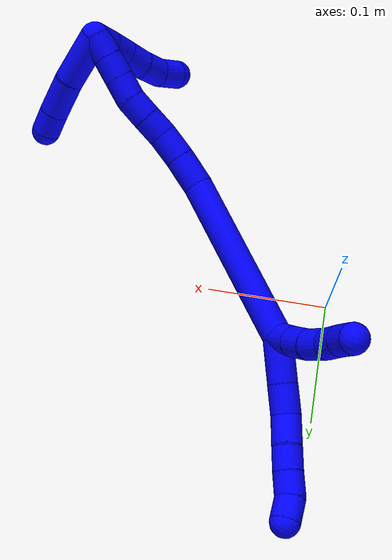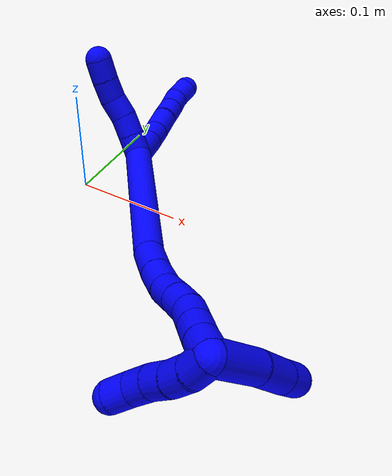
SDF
<sdf version="1.7">
 <world name="default">
  <model name="photoneo_s_sensor">
   <static>1</static>
   <pose>0 0 2 1.57079 1.57079 3.14159</pose>
   <link name="link">
    <inertial><mass>0.1</mass></inertial>
    <sensor name="sensor" type="depth">
     <update_rate>30</update_rate>
     <camera>
      <horizontal_fov>1.22</horizontal_fov>
      <image><width>1920</width><height>1200</height><format>B8G8R8</format></image>
      <clip><near>0.1</near><far>4</far></clip>
      <depth_camera><output>points</output></depth_camera>
     </camera>
     <plugin name="camera_plugin" filename="libgazebo_ros_depth_camera.so">
      <baseline>0.2</baseline>
      <alwaysOn>1</alwaysOn>
      <updateRate>0.0</updateRate>
      <cameraName>camera_ir</cameraName>
      <imageTopicName>/camera/color/image_raw</imageTopicName>
      <cameraInfoTopicName>/camera/color/camera_info</cameraInfoTopicName>
      <depthImageTopicName>/camera/depth/image_raw</depthImageTopicName>
      <depthImageCameraInfoTopicName>/camera/depth/camera_info</depthImageCameraInfoTopicName>
      <pointCloudTopicName>/camera/depth/points</pointCloudTopicName>
      <frameName>fr_optical</frameName>
      <pointCloudCutoff>0.1</pointCloudCutoff>
      <pointCloudCutoffMax>2.0</pointCloudCutoffMax>
      <distortionK1>0</distortionK1>
      <distortionK2>0</distortionK2>
      <distortionK3>0</distortionK3>
      <distortionT1>0</distortionT1>
      <distortionT2>0</distortionT2>
      <CxPrime>0</CxPrime>
      <Cx>0</Cx>
      <Cy>0</Cy>
      <focalLength>0</focalLength>
      <hackBaseline>0</hackBaseline>
     </plugin>
    </sensor>
   </link>
  </model>
  <model name="bin">
   <static>1</static>
   <link name="bottom">
    <collision name="collision-bottom">
     <pose>0 0 -0.01 0 -0 0</pose>
     <geometry><box><size>0.8 0.6 0.02</size></box></geometry>
     <surface>
      <friction><ode><mu>100</mu><mu2>100</mu2></ode></friction>
      <contact><collide_bitmask>65535</collide_bitmask></contact>
     </surface>
    </collision>
   </link>
   <link name="west_wall">
    <collision name="collision-west_wall">
     <pose>-0.41 0 0.1 0 -0 0</pose>
     <geometry><box><size>0.02 0.6 0.2</size></box></geometry>
     <surface>
      <friction><ode><mu>100</mu><mu2>100</mu2></ode></friction>
      <contact><collide_bitmask>65535</collide_bitmask></contact>
     </surface>
    </collision>
   </link>
   <link name="east_wall">
    <collision name="collision-east_wall">
     <pose>0.41 0 0.1 0 -0 0</pose>
     <geometry><box><size>0.02 0.6 0.2</size></box></geometry>
     <surface>
      <friction><ode><mu>100</mu><mu2>100</mu2></ode></friction>
      <contact><collide_bitmask>65535</collide_bitmask></contact>
     </surface>
    </collision>
   </link>
   <link name="south_wall">
    <collision name="collision-south_wall">
     <pose>0 -0.31 0.1 0 -0 0</pose>
     <geometry><box><size>0.8 0.02 0.2</size></box></geometry>
     <surface>
      <friction><ode><mu>100</mu><mu2>100</mu2></ode></friction>
      <contact><collide_bitmask>65535</collide_bitmask></contact>
     </surface>
    </collision>
   </link>
   <link name="north_wall">
    <collision name="collision-north_wall">
     <pose>0 0.31 0.1 0 -0 0</pose>
     <geometry><box><size>0.8 0.02 0.2</size></box></geometry>
     <surface>
      <friction><ode><mu>100</mu><mu2>100</mu2></ode></friction>
      <contact><collide_bitmask>65535</collide_bitmask></contact>
     </surface>
    </collision>
   </link>
  </model>
  <model name="1">
   <static>0</static>
   <link name="1">
    <collision name="collision-cylinder-e_1_2_8">
     <pose>-0.012828 -0.002999 -0.013653 2.92537 -0.742491 -2.5978</pose>
     <geometry><cylinder><radius>0.0125</radius><length>0.037945</length></cylinder></geometry>
     <surface>
      <friction><ode><mu>1.16</mu><mu2>1.16</mu2><slip1>0</slip1><slip2>0</slip2></ode></friction>
      <contact><ode><kp>1e+06</kp><kd>1</kd><max_vel>0</max_vel><min_depth>0.001</min_depth></ode></contact>
     </surface>
    </collision>
    <visual name="visual-cylinder-e_1_2_8">
     <pose>-0.012828 -0.002999 -0.013653 2.92537 -0.742491 -2.5978</pose>
     <geometry><cylinder><radius>0.0125</radius><length>0.037945</length></cylinder></geometry>
     <material><ambient>0 0 1 1</ambient></material>
    </visual>
    <collision name="collision-cylinder-e_2_8_9">
     <pose>-0.035204 -0.007607 -0.036035 2.95936 -0.821895 -2.72823</pose>
     <geometry><cylinder><radius>0.0125</radius><length>0.026073</length></cylinder></geometry>
     <surface>
      <friction><ode><mu>1.16</mu><mu2>1.16</mu2><slip1>0</slip1><slip2>0</slip2></ode></friction>
      <contact><ode><kp>1e+06</kp><kd>1</kd><max_vel>0</max_vel><min_depth>0.001</min_depth></ode></contact>
     </surface>
    </collision>
    <visual name="visual-cylinder-e_2_8_9">
     <pose>-0.035204 -0.007607 -0.036035 2.95936 -0.821895 -2.72823</pose>
     <geometry><cylinder><radius>0.0125</radius><length>0.026073</length></cylinder></geometry>
     <material><ambient>0 0 1 1</ambient></material>
    </visual>
    <collision name="collision-cylinder-e_3_9_10">
     <pose>-0.055721 -0.008224 -0.051064 -2.98558 -1.04409 2.8715</pose>
     <geometry><cylinder><radius>0.0125</radius><length>0.025376</length></cylinder></geometry>
     <surface>
      <friction><ode><mu>1.16</mu><mu2>1.16</mu2><slip1>0</slip1><slip2>0</slip2></ode></friction>
      <contact><ode><kp>1e+06</kp><kd>1</kd><max_vel>0</max_vel><min_depth>0.001</min_depth></ode></contact>
     </surface>
    </collision>
    <visual name="visual-cylinder-e_3_9_10">
     <pose>-0.055721 -0.008224 -0.051064 -2.98558 -1.04409 2.8715</pose>
     <geometry><cylinder><radius>0.0125</radius><length>0.025376</length></cylinder></geometry>
     <material><ambient>0 0 1 1</ambient></material>
    </visual>
    <collision name="collision-cylinder-e_4_10_11">
     <pose>-0.074918 -0.00704 -0.063184 -3.10836 -0.955026 3.07738</pose>
     <geometry><cylinder><radius>0.0125</radius><length>0.02016</length></cylinder></geometry>
     <surface>
      <friction><ode><mu>1.16</mu><mu2>1.16</mu2><slip1>0</slip1><slip2>0</slip2></ode></friction>
      <contact><ode><kp>1e+06</kp><kd>1</kd><max_vel>0</max_vel><min_depth>0.001</min_depth></ode></contact>
     </surface>
    </collision>
    <visual name="visual-cylinder-e_4_10_11">
     <pose>-0.074918 -0.00704 -0.063184 -3.10836 -0.955026 3.07738</pose>
     <geometry><cylinder><radius>0.0125</radius><length>0.02016</length></cylinder></geometry>
     <material><ambient>0 0 1 1</ambient></material>
    </visual>
    <collision name="collision-cylinder-e_5_11_12">
     <pose>-0.091742 -0.006859 -0.074432 3.1393 -1.00749 -3.13742</pose>
     <geometry><cylinder><radius>0.0125</radius><length>0.020334</length></cylinder></geometry>
     <surface>
      <friction><ode><mu>1.16</mu><mu2>1.16</mu2><slip1>0</slip1><slip2>0</slip2></ode></friction>
      <contact><ode><kp>1e+06</kp><kd>1</kd><max_vel>0</max_vel><min_depth>0.001</min_depth></ode></contact>
     </surface>
    </collision>
    <visual name="visual-cylinder-e_5_11_12">
     <pose>-0.091742 -0.006859 -0.074432 3.1393 -1.00749 -3.13742</pose>
     <geometry><cylinder><radius>0.0125</radius><length>0.020334</length></cylinder></geometry>
     <material><ambient>0 0 1 1</ambient></material>
    </visual>
    <collision name="collision-cylinder-e_6_12_6">
     <pose>-0.108489 -0.003588 -0.084751 -2.55035 -0.945098 2.06698</pose>
     <geometry><cylinder><radius>0.0125</radius><length>0.020112</length></cylinder></geometry>
     <surface>
      <friction><ode><mu>1.16</mu><mu2>1.16</mu2><slip1>0</slip1><slip2>0</slip2></ode></friction>
      <contact><ode><kp>1e+06</kp><kd>1</kd><max_vel>0</max_vel><min_depth>0.001</min_depth></ode></contact>
     </surface>
    </collision>
    <visual name="visual-cylinder-e_6_12_6">
     <pose>-0.108489 -0.003588 -0.084751 -2.55035 -0.945098 2.06698</pose>
     <geometry><cylinder><radius>0.0125</radius><length>0.020112</length></cylinder></geometry>
     <material><ambient>0 0 1 1</ambient></material>
    </visual>
    <collision name="collision-cylinder-e_1_2_13">
     <pose>-0.008514 -0.001718 0.004957 0.333691 -1.01856 -0.187534</pose>
     <geometry><cylinder><radius>0.0125</radius><length>0.02</length></cylinder></geometry>
     <surface>
      <friction><ode><mu>1.16</mu><mu2>1.16</mu2><slip1>0</slip1><slip2>0</slip2></ode></friction>
      <contact><ode><kp>1e+06</kp><kd>1</kd><max_vel>0</max_vel><min_depth>0.001</min_depth></ode></contact>
     </surface>
    </collision>
    <visual name="visual-cylinder-e_1_2_13">
     <pose>-0.008514 -0.001718 0.004957 0.333691 -1.01856 -0.187534</pose>
     <geometry><cylinder><radius>0.0125</radius><length>0.02</length></cylinder></geometry>
     <material><ambient>0 0 1 1</ambient></material>
    </visual>
    <collision name="collision-cylinder-e_2_13_14">
     <pose>-0.025313 -0.005116 0.015253 0.304773 -0.976627 -0.162807</pose>
     <geometry><cylinder><radius>0.0125</radius><length>0.02</length></cylinder></geometry>
     <surface>
      <friction><ode><mu>1.16</mu><mu2>1.16</mu2><slip1>0</slip1><slip2>0</slip2></ode></friction>
      <contact><ode><kp>1e+06</kp><kd>1</kd><max_vel>0</max_vel><min_depth>0.001</min_depth></ode></contact>
     </surface>
    </collision>
    <visual name="visual-cylinder-e_2_13_14">
     <pose>-0.025313 -0.005116 0.015253 0.304773 -0.976627 -0.162807</pose>
     <geometry><cylinder><radius>0.0125</radius><length>0.02</length></cylinder></geometry>
     <material><ambient>0 0 1 1</ambient></material>
    </visual>
    <collision name="collision-cylinder-e_3_14_15">
     <pose>-0.040699 -0.009541 0.027079 0.400343 -0.789427 -0.168636</pose>
     <geometry><cylinder><radius>0.0125</radius><length>0.02</length></cylinder></geometry>
     <surface>
      <friction><ode><mu>1.16</mu><mu2>1.16</mu2><slip1>0</slip1><slip2>0</slip2></ode></friction>
      <contact><ode><kp>1e+06</kp><kd>1</kd><max_vel>0</max_vel><min_depth>0.001</min_depth></ode></contact>
     </surface>
    </collision>
    <visual name="visual-cylinder-e_3_14_15">
     <pose>-0.040699 -0.009541 0.027079 0.400343 -0.789427 -0.168636</pose>
     <geometry><cylinder><radius>0.0125</radius><length>0.02</length></cylinder></geometry>
     <material><ambient>0 0 1 1</ambient></material>
    </visual>
    <collision name="collision-cylinder-e_4_15_16">
     <pose>-0.05462 -0.012449 0.040875 0.022304 -0.750685 -0.008788</pose>
     <geometry><cylinder><radius>0.0125</radius><length>0.02</length></cylinder></geometry>
     <surface>
      <friction><ode><mu>1.16</mu><mu2>1.16</mu2><slip1>0</slip1><slip2>0</slip2></ode></friction>
      <contact><ode><kp>1e+06</kp><kd>1</kd><max_vel>0</max_vel><min_depth>0.001</min_depth></ode></contact>
     </surface>
    </collision>
    <visual name="visual-cylinder-e_4_15_16">
     <pose>-0.05462 -0.012449 0.040875 0.022304 -0.750685 -0.008788</pose>
     <geometry><cylinder><radius>0.0125</radius><length>0.02</length></cylinder></geometry>
     <material><ambient>0 0 1 1</ambient></material>
    </visual>
    <collision name="collision-cylinder-e_5_16_5">
     <pose>-0.068672 -0.012322 0.055087 -0.041925 -0.80822 0.017931</pose>
     <geometry><cylinder><radius>0.0125</radius><length>0.02</length></cylinder></geometry>
     <surface>
      <friction><ode><mu>1.16</mu><mu2>1.16</mu2><slip1>0</slip1><slip2>0</slip2></ode></friction>
      <contact><ode><kp>1e+06</kp><kd>1</kd><max_vel>0</max_vel><min_depth>0.001</min_depth></ode></contact>
     </surface>
    </collision>
    <visual name="visual-cylinder-e_5_16_5">
     <pose>-0.068672 -0.012322 0.055087 -0.041925 -0.80822 0.017931</pose>
     <geometry><cylinder><radius>0.0125</radius><length>0.02</length></cylinder></geometry>
     <material><ambient>0 0 1 1</ambient></material>
    </visual>
    <collision name="collision-cylinder-e_1_2_17">
     <pose>0.05919 0.029437 0.031293 -0.754841 0.942941 -0.398836</pose>
     <geometry><cylinder><radius>0.0125</radius><length>0.146277</length></cylinder></geometry>
     <surface>
      <friction><ode><mu>1.16</mu><mu2>1.16</mu2><slip1>0</slip1><slip2>0</slip2></ode></friction>
      <contact><ode><kp>1e+06</kp><kd>1</kd><max_vel>0</max_vel><min_depth>0.001</min_depth></ode></contact>
     </surface>
    </collision>
    <visual name="visual-cylinder-e_1_2_17">
     <pose>0.05919 0.029437 0.031293 -0.754841 0.942941 -0.398836</pose>
     <geometry><cylinder><radius>0.0125</radius><length>0.146277</length></cylinder></geometry>
     <material><ambient>0 0 1 1</ambient></material>
    </visual>
    <collision name="collision-cylinder-e_2_17_18">
     <pose>0.128143 0.067048 0.069359 -0.87886 0.743529 -0.362543</pose>
     <geometry><cylinder><radius>0.0125</radius><length>0.028844</length></cylinder></geometry>
     <surface>
      <friction><ode><mu>1.16</mu><mu2>1.16</mu2><slip1>0</slip1><slip2>0</slip2></ode></friction>
      <contact><ode><kp>1e+06</kp><kd>1</kd><max_vel>0</max_vel><min_depth>0.001</min_depth></ode></contact>
     </surface>
    </collision>
    <visual name="visual-cylinder-e_2_17_18">
     <pose>0.128143 0.067048 0.069359 -0.87886 0.743529 -0.362543</pose>
     <geometry><cylinder><radius>0.0125</radius><length>0.028844</length></cylinder></geometry>
     <material><ambient>0 0 1 1</ambient></material>
    </visual>
    <collision name="collision-cylinder-e_3_18_19">
     <pose>0.145469 0.083074 0.08182 -0.943957 0.662541 -0.347596</pose>
     <geometry><cylinder><radius>0.0125</radius><length>0.024594</length></cylinder></geometry>
     <surface>
      <friction><ode><mu>1.16</mu><mu2>1.16</mu2><slip1>0</slip1><slip2>0</slip2></ode></friction>
      <contact><ode><kp>1e+06</kp><kd>1</kd><max_vel>0</max_vel><min_depth>0.001</min_depth></ode></contact>
     </surface>
    </collision>
    <visual name="visual-cylinder-e_3_18_19">
     <pose>0.145469 0.083074 0.08182 -0.943957 0.662541 -0.347596</pose>
     <geometry><cylinder><radius>0.0125</radius><length>0.024594</length></cylinder></geometry>
     <material><ambient>0 0 1 1</ambient></material>
    </visual>
    <collision name="collision-cylinder-e_4_19_20">
     <pose>0.157692 0.098555 0.092175 -1.02168 0.480206 -0.272729</pose>
     <geometry><cylinder><radius>0.0125</radius><length>0.020168</length></cylinder></geometry>
     <surface>
      <friction><ode><mu>1.16</mu><mu2>1.16</mu2><slip1>0</slip1><slip2>0</slip2></ode></friction>
      <contact><ode><kp>1e+06</kp><kd>1</kd><max_vel>0</max_vel><min_depth>0.001</min_depth></ode></contact>
     </surface>
    </collision>
    <visual name="visual-cylinder-e_4_19_20">
     <pose>0.157692 0.098555 0.092175 -1.02168 0.480206 -0.272729</pose>
     <geometry><cylinder><radius>0.0125</radius><length>0.020168</length></cylinder></geometry>
     <material><ambient>0 0 1 1</ambient></material>
    </visual>
    <collision name="collision-cylinder-e_5_20_21">
     <pose>0.167356 0.113574 0.101462 -1.01212 0.521364 -0.293542</pose>
     <geometry><cylinder><radius>0.0125</radius><length>0.020102</length></cylinder></geometry>
     <surface>
      <friction><ode><mu>1.16</mu><mu2>1.16</mu2><slip1>0</slip1><slip2>0</slip2></ode></friction>
      <contact><ode><kp>1e+06</kp><kd>1</kd><max_vel>0</max_vel><min_depth>0.001</min_depth></ode></contact>
     </surface>
    </collision>
    <visual name="visual-cylinder-e_5_20_21">
     <pose>0.167356 0.113574 0.101462 -1.01212 0.521364 -0.293542</pose>
     <geometry><cylinder><radius>0.0125</radius><length>0.020102</length></cylinder></geometry>
     <material><ambient>0 0 1 1</ambient></material>
    </visual>
    <collision name="collision-cylinder-e_6_21_22">
     <pose>0.178132 0.126598 0.112008 -0.760062 0.614537 -0.25216</pose>
     <geometry><cylinder><radius>0.0125</radius><length>0.020014</length></cylinder></geometry>
     <surface>
      <friction><ode><mu>1.16</mu><mu2>1.16</mu2><slip1>0</slip1><slip2>0</slip2></ode></friction>
      <contact><ode><kp>1e+06</kp><kd>1</kd><max_vel>0</max_vel><min_depth>0.001</min_depth></ode></contact>
     </surface>
    </collision>
    <visual name="visual-cylinder-e_6_21_22">
     <pose>0.178132 0.126598 0.112008 -0.760062 0.614537 -0.25216</pose>
     <geometry><cylinder><radius>0.0125</radius><length>0.020014</length></cylinder></geometry>
     <material><ambient>0 0 1 1</ambient></material>
    </visual>
    <collision name="collision-cylinder-e_7_22_23">
     <pose>0.189621 0.137874 0.123888 -0.758562 0.608838 -0.249158</pose>
     <geometry><cylinder><radius>0.0125</radius><length>0.02</length></cylinder></geometry>
     <surface>
      <friction><ode><mu>1.16</mu><mu2>1.16</mu2><slip1>0</slip1><slip2>0</slip2></ode></friction>
      <contact><ode><kp>1e+06</kp><kd>1</kd><max_vel>0</max_vel><min_depth>0.001</min_depth></ode></contact>
     </surface>
    </collision>
    <visual name="visual-cylinder-e_7_22_23">
     <pose>0.189621 0.137874 0.123888 -0.758562 0.608838 -0.249158</pose>
     <geometry><cylinder><radius>0.0125</radius><length>0.02</length></cylinder></geometry>
     <material><ambient>0 0 1 1</ambient></material>
    </visual>
    <collision name="collision-cylinder-e_8_23_1">
     <pose>0.200767 0.149628 0.135605 -0.814827 0.57358 -0.25319</pose>
     <geometry><cylinder><radius>0.0125</radius><length>0.02</length></cylinder></geometry>
     <surface>
      <friction><ode><mu>1.16</mu><mu2>1.16</mu2><slip1>0</slip1><slip2>0</slip2></ode></friction>
      <contact><ode><kp>1e+06</kp><kd>1</kd><max_vel>0</max_vel><min_depth>0.001</min_depth></ode></contact>
     </surface>
    </collision>
    <visual name="visual-cylinder-e_8_23_1">
     <pose>0.200767 0.149628 0.135605 -0.814827 0.57358 -0.25319</pose>
     <geometry><cylinder><radius>0.0125</radius><length>0.02</length></cylinder></geometry>
     <material><ambient>0 0 1 1</ambient></material>
    </visual>
    <collision name="collision-cylinder-e_1_1_24">
     <pose>0.207308 0.161201 0.119229 -2.89973 0.048851 -0.396772</pose>
     <geometry><cylinder><radius>0.0125</radius><length>0.045657</length></cylinder></geometry>
     <surface>
      <friction><ode><mu>1.16</mu><mu2>1.16</mu2><slip1>0</slip1><slip2>0</slip2></ode></friction>
      <contact><ode><kp>1e+06</kp><kd>1</kd><max_vel>0</max_vel><min_depth>0.001</min_depth></ode></contact>
     </surface>
    </collision>
    <visual name="visual-cylinder-e_1_1_24">
     <pose>0.207308 0.161201 0.119229 -2.89973 0.048851 -0.396772</pose>
     <geometry><cylinder><radius>0.0125</radius><length>0.045657</length></cylinder></geometry>
     <material><ambient>0 0 1 1</ambient></material>
    </visual>
    <collision name="collision-cylinder-e_2_24_25">
     <pose>0.210108 0.168878 0.080492 -3.00889 0.100311 -1.29395</pose>
     <geometry><cylinder><radius>0.0125</radius><length>0.033662</length></cylinder></geometry>
     <surface>
      <friction><ode><mu>1.16</mu><mu2>1.16</mu2><slip1>0</slip1><slip2>0</slip2></ode></friction>
      <contact><ode><kp>1e+06</kp><kd>1</kd><max_vel>0</max_vel><min_depth>0.001</min_depth></ode></contact>
     </surface>
    </collision>
    <visual name="visual-cylinder-e_2_24_25">
     <pose>0.210108 0.168878 0.080492 -3.00889 0.100311 -1.29395</pose>
     <geometry><cylinder><radius>0.0125</radius><length>0.033662</length></cylinder></geometry>
     <material><ambient>0 0 1 1</ambient></material>
    </visual>
    <collision name="collision-cylinder-e_3_25_4">
     <pose>0.212347 0.172211 0.053628 -3.03322 0.053542 -0.917184</pose>
     <geometry><cylinder><radius>0.0125</radius><length>0.02068</length></cylinder></geometry>
     <surface>
      <friction><ode><mu>1.16</mu><mu2>1.16</mu2><slip1>0</slip1><slip2>0</slip2></ode></friction>
      <contact><ode><kp>1e+06</kp><kd>1</kd><max_vel>0</max_vel><min_depth>0.001</min_depth></ode></contact>
     </surface>
    </collision>
    <visual name="visual-cylinder-e_3_25_4">
     <pose>0.212347 0.172211 0.053628 -3.03322 0.053542 -0.917184</pose>
     <geometry><cylinder><radius>0.0125</radius><length>0.02068</length></cylinder></geometry>
     <material><ambient>0 0 1 1</ambient></material>
    </visual>
    <collision name="collision-cylinder-e_1_1_26">
     <pose>0.210346 0.147499 0.137513 2.00823 0.428194 0.658545</pose>
     <geometry><cylinder><radius>0.0125</radius><length>0.02</length></cylinder></geometry>
     <surface>
      <friction><ode><mu>1.16</mu><mu2>1.16</mu2><slip1>0</slip1><slip2>0</slip2></ode></friction>
      <contact><ode><kp>1e+06</kp><kd>1</kd><max_vel>0</max_vel><min_depth>0.001</min_depth></ode></contact>
     </surface>
    </collision>
    <visual name="visual-cylinder-e_1_1_26">
     <pose>0.210346 0.147499 0.137513 2.00823 0.428194 0.658545</pose>
     <geometry><cylinder><radius>0.0125</radius><length>0.02</length></cylinder></geometry>
     <material><ambient>0 0 1 1</ambient></material>
    </visual>
    <collision name="collision-cylinder-e_2_26_27">
     <pose>0.216717 0.130301 0.129808 1.97687 0.22374 0.337917</pose>
     <geometry><cylinder><radius>0.0125</radius><length>0.02</length></cylinder></geometry>
     <surface>
      <friction><ode><mu>1.16</mu><mu2>1.16</mu2><slip1>0</slip1><slip2>0</slip2></ode></friction>
      <contact><ode><kp>1e+06</kp><kd>1</kd><max_vel>0</max_vel><min_depth>0.001</min_depth></ode></contact>
     </surface>
    </collision>
    <visual name="visual-cylinder-e_2_26_27">
     <pose>0.216717 0.130301 0.129808 1.97687 0.22374 0.337917</pose>
     <geometry><cylinder><radius>0.0125</radius><length>0.02</length></cylinder></geometry>
     <material><ambient>0 0 1 1</ambient></material>
    </visual>
    <collision name="collision-cylinder-e_3_27_28">
     <pose>0.219806 0.112097 0.122249 1.95212 0.087139 0.128724</pose>
     <geometry><cylinder><radius>0.0125</radius><length>0.02</length></cylinder></geometry>
     <surface>
      <friction><ode><mu>1.16</mu><mu2>1.16</mu2><slip1>0</slip1><slip2>0</slip2></ode></friction>
      <contact><ode><kp>1e+06</kp><kd>1</kd><max_vel>0</max_vel><min_depth>0.001</min_depth></ode></contact>
     </surface>
    </collision>
    <visual name="visual-cylinder-e_3_27_28">
     <pose>0.219806 0.112097 0.122249 1.95212 0.087139 0.128724</pose>
     <geometry><cylinder><radius>0.0125</radius><length>0.02</length></cylinder></geometry>
     <material><ambient>0 0 1 1</ambient></material>
    </visual>
    <collision name="collision-cylinder-e_4_28_29">
     <pose>0.222798 0.093589 0.115424 1.89552 0.21386 0.296594</pose>
     <geometry><cylinder><radius>0.0125</radius><length>0.02</length></cylinder></geometry>
     <surface>
      <friction><ode><mu>1.16</mu><mu2>1.16</mu2><slip1>0</slip1><slip2>0</slip2></ode></friction>
      <contact><ode><kp>1e+06</kp><kd>1</kd><max_vel>0</max_vel><min_depth>0.001</min_depth></ode></contact>
     </surface>
    </collision>
    <visual name="visual-cylinder-e_4_28_29">
     <pose>0.222798 0.093589 0.115424 1.89552 0.21386 0.296594</pose>
     <geometry><cylinder><radius>0.0125</radius><length>0.02</length></cylinder></geometry>
     <material><ambient>0 0 1 1</ambient></material>
    </visual>
    <collision name="collision-cylinder-e_5_29_3">
     <pose>0.22801 0.074835 0.111708 1.63373 0.31407 0.334116</pose>
     <geometry><cylinder><radius>0.0125</radius><length>0.02</length></cylinder></geometry>
     <surface>
      <friction><ode><mu>1.16</mu><mu2>1.16</mu2><slip1>0</slip1><slip2>0</slip2></ode></friction>
      <contact><ode><kp>1e+06</kp><kd>1</kd><max_vel>0</max_vel><min_depth>0.001</min_depth></ode></contact>
     </surface>
    </collision>
    <visual name="visual-cylinder-e_5_29_3">
     <pose>0.22801 0.074835 0.111708 1.63373 0.31407 0.334116</pose>
     <geometry><cylinder><radius>0.0125</radius><length>0.02</length></cylinder></geometry>
     <material><ambient>0 0 1 1</ambient></material>
    </visual>
    <collision name="collision-sphere-3">
     <pose>0.231099 0.065343 0.11111 0 -0 0</pose>
     <geometry><sphere><radius>0.0125</radius></sphere></geometry>
     <surface>
      <friction><ode><mu>1.16</mu><mu2>1.16</mu2><slip1>0</slip1><slip2>0</slip2></ode></friction>
      <contact><ode><kp>1e+06</kp><kd>1</kd><max_vel>0</max_vel><min_depth>0.001</min_depth></ode></contact>
     </surface>
    </collision>
    <visual name="visual-sphere-3">
     <pose>0.231099 0.065343 0.11111 0 -0 0</pose>
     <geometry><sphere><radius>0.0125</radius></sphere></geometry>
     <material><ambient>0 0 1 1</ambient></material>
    </visual>
    <collision name="collision-sphere-29">
     <pose>0.224921 0.084327 0.112306 0 -0 0</pose>
     <geometry><sphere><radius>0.0125</radius></sphere></geometry>
     <surface>
      <friction><ode><mu>1.16</mu><mu2>1.16</mu2><slip1>0</slip1><slip2>0</slip2></ode></friction>
      <contact><ode><kp>1e+06</kp><kd>1</kd><max_vel>0</max_vel><min_depth>0.001</min_depth></ode></contact>
     </surface>
    </collision>
    <visual name="visual-sphere-29">
     <pose>0.224921 0.084327 0.112306 0 -0 0</pose>
     <geometry><sphere><radius>0.0125</radius></sphere></geometry>
     <material><ambient>0 0 1 1</ambient></material>
    </visual>
    <collision name="collision-sphere-28">
     <pose>0.220676 0.10285 0.118541 0 -0 0</pose>
     <geometry><sphere><radius>0.0125</radius></sphere></geometry>
     <surface>
      <friction><ode><mu>1.16</mu><mu2>1.16</mu2><slip1>0</slip1><slip2>0</slip2></ode></friction>
      <contact><ode><kp>1e+06</kp><kd>1</kd><max_vel>0</max_vel><min_depth>0.001</min_depth></ode></contact>
     </surface>
    </collision>
    <visual name="visual-sphere-28">
     <pose>0.220676 0.10285 0.118541 0 -0 0</pose>
     <geometry><sphere><radius>0.0125</radius></sphere></geometry>
     <material><ambient>0 0 1 1</ambient></material>
    </visual>
    <collision name="collision-sphere-27">
     <pose>0.218935 0.121343 0.125956 0 -0 0</pose>
     <geometry><sphere><radius>0.0125</radius></sphere></geometry>
     <surface>
      <friction><ode><mu>1.16</mu><mu2>1.16</mu2><slip1>0</slip1><slip2>0</slip2></ode></friction>
      <contact><ode><kp>1e+06</kp><kd>1</kd><max_vel>0</max_vel><min_depth>0.001</min_depth></ode></contact>
     </surface>
    </collision>
    <visual name="visual-sphere-27">
     <pose>0.218935 0.121343 0.125956 0 -0 0</pose>
     <geometry><sphere><radius>0.0125</radius></sphere></geometry>
     <material><ambient>0 0 1 1</ambient></material>
    </visual>
    <collision name="collision-sphere-26">
     <pose>0.214498 0.139259 0.133659 0 -0 0</pose>
     <geometry><sphere><radius>0.0125</radius></sphere></geometry>
     <surface>
      <friction><ode><mu>1.16</mu><mu2>1.16</mu2><slip1>0</slip1><slip2>0</slip2></ode></friction>
      <contact><ode><kp>1e+06</kp><kd>1</kd><max_vel>0</max_vel><min_depth>0.001</min_depth></ode></contact>
     </surface>
    </collision>
    <visual name="visual-sphere-26">
     <pose>0.214498 0.139259 0.133659 0 -0 0</pose>
     <geometry><sphere><radius>0.0125</radius></sphere></geometry>
     <material><ambient>0 0 1 1</ambient></material>
    </visual>
    <collision name="collision-sphere-4">
     <pose>0.212901 0.173328 0.043363 0 -0 0</pose>
     <geometry><sphere><radius>0.0125</radius></sphere></geometry>
     <surface>
      <friction><ode><mu>1.16</mu><mu2>1.16</mu2><slip1>0</slip1><slip2>0</slip2></ode></friction>
      <contact><ode><kp>1e+06</kp><kd>1</kd><max_vel>0</max_vel><min_depth>0.001</min_depth></ode></contact>
     </surface>
    </collision>
    <visual name="visual-sphere-4">
     <pose>0.212901 0.173328 0.043363 0 -0 0</pose>
     <geometry><sphere><radius>0.0125</radius></sphere></geometry>
     <material><ambient>0 0 1 1</ambient></material>
    </visual>
    <collision name="collision-sphere-25">
     <pose>0.211794 0.171094 0.063892 0 -0 0</pose>
     <geometry><sphere><radius>0.0125</radius></sphere></geometry>
     <surface>
      <friction><ode><mu>1.16</mu><mu2>1.16</mu2><slip1>0</slip1><slip2>0</slip2></ode></friction>
      <contact><ode><kp>1e+06</kp><kd>1</kd><max_vel>0</max_vel><min_depth>0.001</min_depth></ode></contact>
     </surface>
    </collision>
    <visual name="visual-sphere-25">
     <pose>0.211794 0.171094 0.063892 0 -0 0</pose>
     <geometry><sphere><radius>0.0125</radius></sphere></geometry>
     <material><ambient>0 0 1 1</ambient></material>
    </visual>
    <collision name="collision-sphere-24">
     <pose>0.208423 0.166662 0.097091 0 -0 0</pose>
     <geometry><sphere><radius>0.0125</radius></sphere></geometry>
     <surface>
      <friction><ode><mu>1.16</mu><mu2>1.16</mu2><slip1>0</slip1><slip2>0</slip2></ode></friction>
      <contact><ode><kp>1e+06</kp><kd>1</kd><max_vel>0</max_vel><min_depth>0.001</min_depth></ode></contact>
     </surface>
    </collision>
    <visual name="visual-sphere-24">
     <pose>0.208423 0.166662 0.097091 0 -0 0</pose>
     <geometry><sphere><radius>0.0125</radius></sphere></geometry>
     <material><ambient>0 0 1 1</ambient></material>
    </visual>
    <collision name="collision-sphere-1">
     <pose>0.206193 0.15574 0.141367 0 -0 0</pose>
     <geometry><sphere><radius>0.0125</radius></sphere></geometry>
     <surface>
      <friction><ode><mu>1.16</mu><mu2>1.16</mu2><slip1>0</slip1><slip2>0</slip2></ode></friction>
      <contact><ode><kp>1e+06</kp><kd>1</kd><max_vel>0</max_vel><min_depth>0.001</min_depth></ode></contact>
     </surface>
    </collision>
    <visual name="visual-sphere-1">
     <pose>0.206193 0.15574 0.141367 0 -0 0</pose>
     <geometry><sphere><radius>0.0125</radius></sphere></geometry>
     <material><ambient>0 0 1 1</ambient></material>
    </visual>
    <collision name="collision-sphere-23">
     <pose>0.19534 0.143517 0.129842 0 -0 0</pose>
     <geometry><sphere><radius>0.0125</radius></sphere></geometry>
     <surface>
      <friction><ode><mu>1.16</mu><mu2>1.16</mu2><slip1>0</slip1><slip2>0</slip2></ode></friction>
      <contact><ode><kp>1e+06</kp><kd>1</kd><max_vel>0</max_vel><min_depth>0.001</min_depth></ode></contact>
     </surface>
    </collision>
    <visual name="visual-sphere-23">
     <pose>0.19534 0.143517 0.129842 0 -0 0</pose>
     <geometry><sphere><radius>0.0125</radius></sphere></geometry>
     <material><ambient>0 0 1 1</ambient></material>
    </visual>
    <collision name="collision-sphere-22">
     <pose>0.183902 0.132231 0.117934 0 -0 0</pose>
     <geometry><sphere><radius>0.0125</radius></sphere></geometry>
     <surface>
      <friction><ode><mu>1.16</mu><mu2>1.16</mu2><slip1>0</slip1><slip2>0</slip2></ode></friction>
      <contact><ode><kp>1e+06</kp><kd>1</kd><max_vel>0</max_vel><min_depth>0.001</min_depth></ode></contact>
     </surface>
    </collision>
    <visual name="visual-sphere-22">
     <pose>0.183902 0.132231 0.117934 0 -0 0</pose>
     <geometry><sphere><radius>0.0125</radius></sphere></geometry>
     <material><ambient>0 0 1 1</ambient></material>
    </visual>
    <collision name="collision-sphere-21">
     <pose>0.172362 0.120965 0.106082 0 -0 0</pose>
     <geometry><sphere><radius>0.0125</radius></sphere></geometry>
     <surface>
      <friction><ode><mu>1.16</mu><mu2>1.16</mu2><slip1>0</slip1><slip2>0</slip2></ode></friction>
      <contact><ode><kp>1e+06</kp><kd>1</kd><max_vel>0</max_vel><min_depth>0.001</min_depth></ode></contact>
     </surface>
    </collision>
    <visual name="visual-sphere-21">
     <pose>0.172362 0.120965 0.106082 0 -0 0</pose>
     <geometry><sphere><radius>0.0125</radius></sphere></geometry>
     <material><ambient>0 0 1 1</ambient></material>
    </visual>
    <collision name="collision-sphere-12">
     <pose>-0.100338 -0.006871 -0.079861 0 -0 0</pose>
     <geometry><sphere><radius>0.0125</radius></sphere></geometry>
     <surface>
      <friction><ode><mu>1.16</mu><mu2>1.16</mu2><slip1>0</slip1><slip2>0</slip2></ode></friction>
      <contact><ode><kp>1e+06</kp><kd>1</kd><max_vel>0</max_vel><min_depth>0.001</min_depth></ode></contact>
     </surface>
    </collision>
    <visual name="visual-sphere-12">
     <pose>-0.100338 -0.006871 -0.079861 0 -0 0</pose>
     <geometry><sphere><radius>0.0125</radius></sphere></geometry>
     <material><ambient>0 0 1 1</ambient></material>
    </visual>
    <collision name="collision-sphere-11">
     <pose>-0.083146 -0.006846 -0.069003 0 -0 0</pose>
     <geometry><sphere><radius>0.0125</radius></sphere></geometry>
     <surface>
      <friction><ode><mu>1.16</mu><mu2>1.16</mu2><slip1>0</slip1><slip2>0</slip2></ode></friction>
      <contact><ode><kp>1e+06</kp><kd>1</kd><max_vel>0</max_vel><min_depth>0.001</min_depth></ode></contact>
     </surface>
    </collision>
    <visual name="visual-sphere-11">
     <pose>-0.083146 -0.006846 -0.069003 0 -0 0</pose>
     <geometry><sphere><radius>0.0125</radius></sphere></geometry>
     <material><ambient>0 0 1 1</ambient></material>
    </visual>
    <collision name="collision-sphere-10">
     <pose>-0.066689 -0.007233 -0.057365 0 -0 0</pose>
     <geometry><sphere><radius>0.0125</radius></sphere></geometry>
     <surface>
      <friction><ode><mu>1.16</mu><mu2>1.16</mu2><slip1>0</slip1><slip2>0</slip2></ode></friction>
      <contact><ode><kp>1e+06</kp><kd>1</kd><max_vel>0</max_vel><min_depth>0.001</min_depth></ode></contact>
     </surface>
    </collision>
    <visual name="visual-sphere-10">
     <pose>-0.066689 -0.007233 -0.057365 0 -0 0</pose>
     <geometry><sphere><radius>0.0125</radius></sphere></geometry>
     <material><ambient>0 0 1 1</ambient></material>
    </visual>
    <collision name="collision-sphere-9">
     <pose>-0.044752 -0.009215 -0.044764 0 -0 0</pose>
     <geometry><sphere><radius>0.0125</radius></sphere></geometry>
     <surface>
      <friction><ode><mu>1.16</mu><mu2>1.16</mu2><slip1>0</slip1><slip2>0</slip2></ode></friction>
      <contact><ode><kp>1e+06</kp><kd>1</kd><max_vel>0</max_vel><min_depth>0.001</min_depth></ode></contact>
     </surface>
    </collision>
    <visual name="visual-sphere-9">
     <pose>-0.044752 -0.009215 -0.044764 0 -0 0</pose>
     <geometry><sphere><radius>0.0125</radius></sphere></geometry>
     <material><ambient>0 0 1 1</ambient></material>
    </visual>
    <collision name="collision-sphere-2">
     <geometry><sphere><radius>0.0125</radius></sphere></geometry>
     <surface>
      <friction><ode><mu>1.16</mu><mu2>1.16</mu2><slip1>0</slip1><slip2>0</slip2></ode></friction>
      <contact><ode><kp>1e+06</kp><kd>1</kd><max_vel>0</max_vel><min_depth>0.001</min_depth></ode></contact>
     </surface>
    </collision>
    <visual name="visual-sphere-2">
     <geometry><sphere><radius>0.0125</radius></sphere></geometry>
     <material><ambient>0 0 1 1</ambient></material>
    </visual>
    <collision name="collision-sphere-19">
     <pose>0.153033 0.090926 0.087507 0 -0 0</pose>
     <geometry><sphere><radius>0.0125</radius></sphere></geometry>
     <surface>
      <friction><ode><mu>1.16</mu><mu2>1.16</mu2><slip1>0</slip1><slip2>0</slip2></ode></friction>
      <contact><ode><kp>1e+06</kp><kd>1</kd><max_vel>0</max_vel><min_depth>0.001</min_depth></ode></contact>
     </surface>
    </collision>
    <visual name="visual-sphere-19">
     <pose>0.153033 0.090926 0.087507 0 -0 0</pose>
     <geometry><sphere><radius>0.0125</radius></sphere></geometry>
     <material><ambient>0 0 1 1</ambient></material>
    </visual>
    <collision name="collision-sphere-8">
     <pose>-0.025655 -0.005998 -0.027306 0 -0 0</pose>
     <geometry><sphere><radius>0.0125</radius></sphere></geometry>
     <surface>
      <friction><ode><mu>1.16</mu><mu2>1.16</mu2><slip1>0</slip1><slip2>0</slip2></ode></friction>
      <contact><ode><kp>1e+06</kp><kd>1</kd><max_vel>0</max_vel><min_depth>0.001</min_depth></ode></contact>
     </surface>
    </collision>
    <visual name="visual-sphere-8">
     <pose>-0.025655 -0.005998 -0.027306 0 -0 0</pose>
     <geometry><sphere><radius>0.0125</radius></sphere></geometry>
     <material><ambient>0 0 1 1</ambient></material>
    </visual>
    <collision name="collision-sphere-6">
     <pose>-0.11664 -0.000305 -0.08964 0 -0 0</pose>
     <geometry><sphere><radius>0.0125</radius></sphere></geometry>
     <surface>
      <friction><ode><mu>1.16</mu><mu2>1.16</mu2><slip1>0</slip1><slip2>0</slip2></ode></friction>
      <contact><ode><kp>1e+06</kp><kd>1</kd><max_vel>0</max_vel><min_depth>0.001</min_depth></ode></contact>
     </surface>
    </collision>
    <visual name="visual-sphere-6">
     <pose>-0.11664 -0.000305 -0.08964 0 -0 0</pose>
     <geometry><sphere><radius>0.0125</radius></sphere></geometry>
     <material><ambient>0 0 1 1</ambient></material>
    </visual>
    <collision name="collision-sphere-13">
     <pose>-0.017027 -0.003436 0.009913 0 -0 0</pose>
     <geometry><sphere><radius>0.0125</radius></sphere></geometry>
     <surface>
      <friction><ode><mu>1.16</mu><mu2>1.16</mu2><slip1>0</slip1><slip2>0</slip2></ode></friction>
      <contact><ode><kp>1e+06</kp><kd>1</kd><max_vel>0</max_vel><min_depth>0.001</min_depth></ode></contact>
     </surface>
    </collision>
    <visual name="visual-sphere-13">
     <pose>-0.017027 -0.003436 0.009913 0 -0 0</pose>
     <geometry><sphere><radius>0.0125</radius></sphere></geometry>
     <material><ambient>0 0 1 1</ambient></material>
    </visual>
    <collision name="collision-sphere-14">
     <pose>-0.033599 -0.006796 0.020594 0 -0 0</pose>
     <geometry><sphere><radius>0.0125</radius></sphere></geometry>
     <surface>
      <friction><ode><mu>1.16</mu><mu2>1.16</mu2><slip1>0</slip1><slip2>0</slip2></ode></friction>
      <contact><ode><kp>1e+06</kp><kd>1</kd><max_vel>0</max_vel><min_depth>0.001</min_depth></ode></contact>
     </surface>
    </collision>
    <visual name="visual-sphere-14">
     <pose>-0.033599 -0.006796 0.020594 0 -0 0</pose>
     <geometry><sphere><radius>0.0125</radius></sphere></geometry>
     <material><ambient>0 0 1 1</ambient></material>
    </visual>
    <collision name="collision-sphere-15">
     <pose>-0.047798 -0.012286 0.033565 0 -0 0</pose>
     <geometry><sphere><radius>0.0125</radius></sphere></geometry>
     <surface>
      <friction><ode><mu>1.16</mu><mu2>1.16</mu2><slip1>0</slip1><slip2>0</slip2></ode></friction>
      <contact><ode><kp>1e+06</kp><kd>1</kd><max_vel>0</max_vel><min_depth>0.001</min_depth></ode></contact>
     </surface>
    </collision>
    <visual name="visual-sphere-15">
     <pose>-0.047798 -0.012286 0.033565 0 -0 0</pose>
     <geometry><sphere><radius>0.0125</radius></sphere></geometry>
     <material><ambient>0 0 1 1</ambient></material>
    </visual>
    <collision name="collision-sphere-16">
     <pose>-0.061441 -0.012612 0.048186 0 -0 0</pose>
     <geometry><sphere><radius>0.0125</radius></sphere></geometry>
     <surface>
      <friction><ode><mu>1.16</mu><mu2>1.16</mu2><slip1>0</slip1><slip2>0</slip2></ode></friction>
      <contact><ode><kp>1e+06</kp><kd>1</kd><max_vel>0</max_vel><min_depth>0.001</min_depth></ode></contact>
     </surface>
    </collision>
    <visual name="visual-sphere-16">
     <pose>-0.061441 -0.012612 0.048186 0 -0 0</pose>
     <geometry><sphere><radius>0.0125</radius></sphere></geometry>
     <material><ambient>0 0 1 1</ambient></material>
    </visual>
    <collision name="collision-sphere-5">
     <pose>-0.075902 -0.012033 0.061989 0 -0 0</pose>
     <geometry><sphere><radius>0.0125</radius></sphere></geometry>
     <surface>
      <friction><ode><mu>1.16</mu><mu2>1.16</mu2><slip1>0</slip1><slip2>0</slip2></ode></friction>
      <contact><ode><kp>1e+06</kp><kd>1</kd><max_vel>0</max_vel><min_depth>0.001</min_depth></ode></contact>
     </surface>
    </collision>
    <visual name="visual-sphere-5">
     <pose>-0.075902 -0.012033 0.061989 0 -0 0</pose>
     <geometry><sphere><radius>0.0125</radius></sphere></geometry>
     <material><ambient>0 0 1 1</ambient></material>
    </visual>
    <collision name="collision-sphere-17">
     <pose>0.118381 0.058873 0.062586 0 -0 0</pose>
     <geometry><sphere><radius>0.0125</radius></sphere></geometry>
     <surface>
      <friction><ode><mu>1.16</mu><mu2>1.16</mu2><slip1>0</slip1><slip2>0</slip2></ode></friction>
      <contact><ode><kp>1e+06</kp><kd>1</kd><max_vel>0</max_vel><min_depth>0.001</min_depth></ode></contact>
     </surface>
    </collision>
    <visual name="visual-sphere-17">
     <pose>0.118381 0.058873 0.062586 0 -0 0</pose>
     <geometry><sphere><radius>0.0125</radius></sphere></geometry>
     <material><ambient>0 0 1 1</ambient></material>
    </visual>
    <collision name="collision-sphere-18">
     <pose>0.137905 0.075222 0.076132 0 -0 0</pose>
     <geometry><sphere><radius>0.0125</radius></sphere></geometry>
     <surface>
      <friction><ode><mu>1.16</mu><mu2>1.16</mu2><slip1>0</slip1><slip2>0</slip2></ode></friction>
      <contact><ode><kp>1e+06</kp><kd>1</kd><max_vel>0</max_vel><min_depth>0.001</min_depth></ode></contact>
     </surface>
    </collision>
    <visual name="visual-sphere-18">
     <pose>0.137905 0.075222 0.076132 0 -0 0</pose>
     <geometry><sphere><radius>0.0125</radius></sphere></geometry>
     <material><ambient>0 0 1 1</ambient></material>
    </visual>
    <collision name="collision-sphere-20">
     <pose>0.16235 0.106184 0.096843 0 -0 0</pose>
     <geometry><sphere><radius>0.0125</radius></sphere></geometry>
     <surface>
      <friction><ode><mu>1.16</mu><mu2>1.16</mu2><slip1>0</slip1><slip2>0</slip2></ode></friction>
      <contact><ode><kp>1e+06</kp><kd>1</kd><max_vel>0</max_vel><min_depth>0.001</min_depth></ode></contact>
     </surface>
    </collision>
    <visual name="visual-sphere-20">
     <pose>0.16235 0.106184 0.096843 0 -0 0</pose>
     <geometry><sphere><radius>0.0125</radius></sphere></geometry>
     <material><ambient>0 0 1 1</ambient></material>
    </visual>
    <inertial>
     <pose>0.085866 0.062551 0.049516 0 -0 0</pose>
     <mass>0.75</mass>
     <inertia>
      <ixx>9.8e-05</ixx>
      <ixy>0</ixy>
      <ixz>0</ixz>
      <iyy>0.000187</iyy>
      <iyz>0</iyz>
      <izz>-0.00032</izz>
     </inertia>
    </inertial>
   </link>
   <pose>0.037487 0.039794 0.025756 0.476928 0.562071 -1.11236</pose>
  </model>
 </world>
</sdf>
